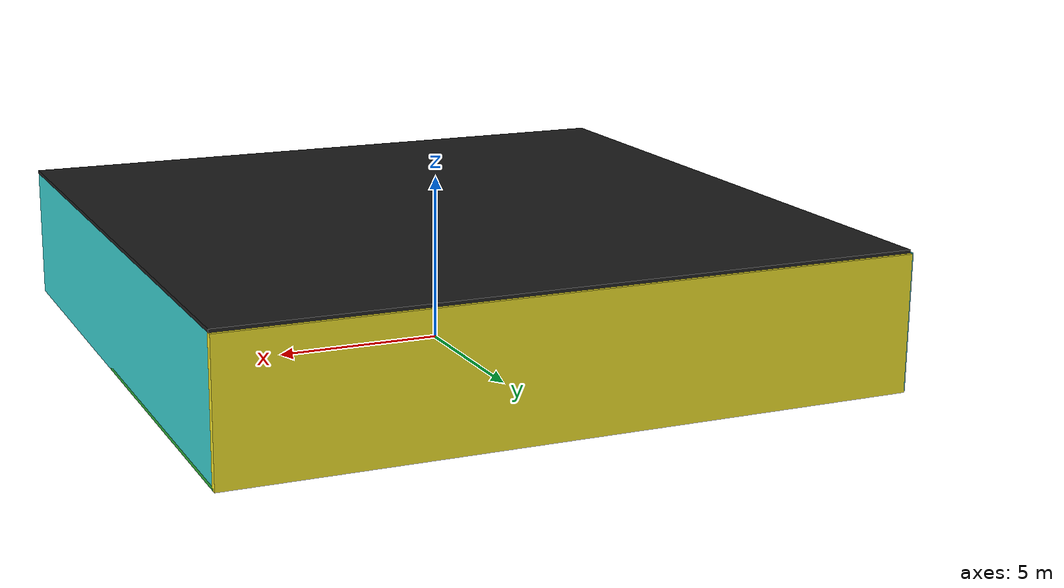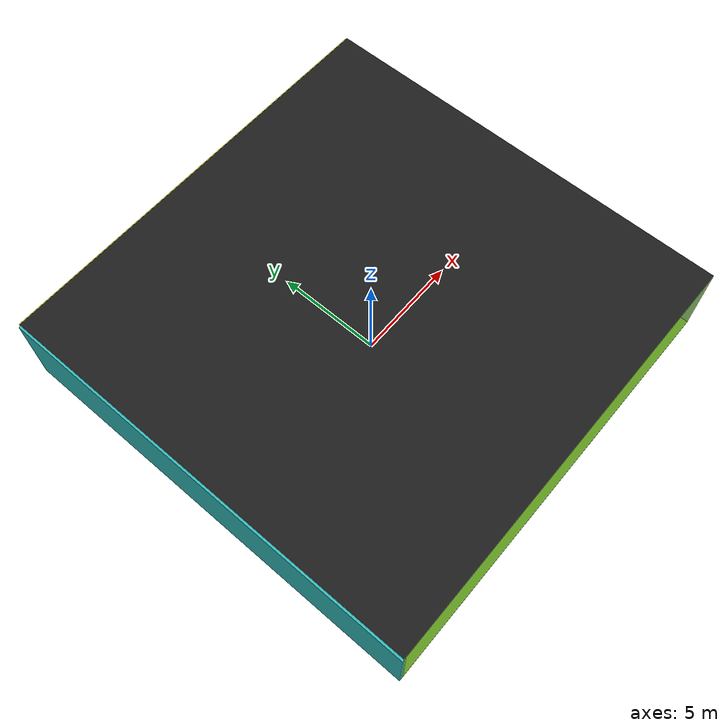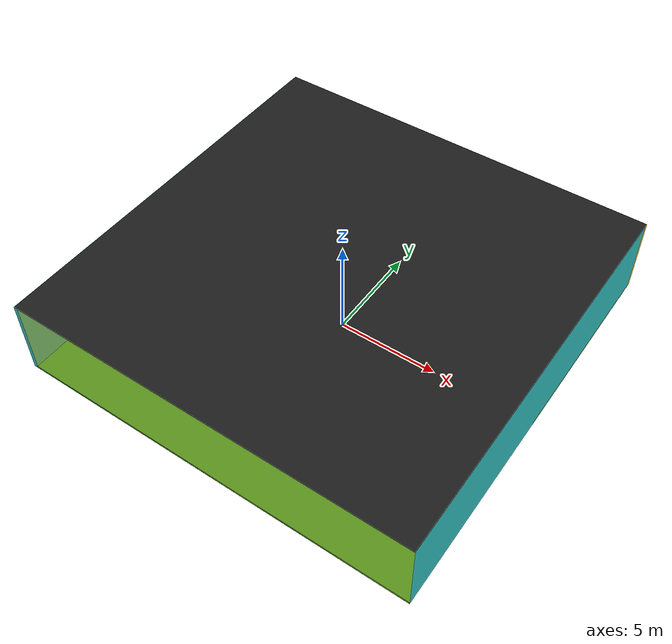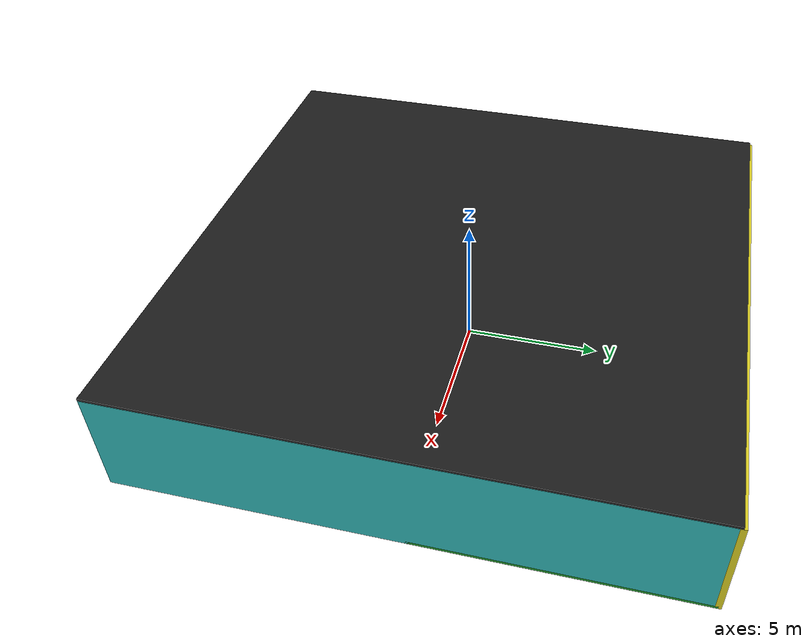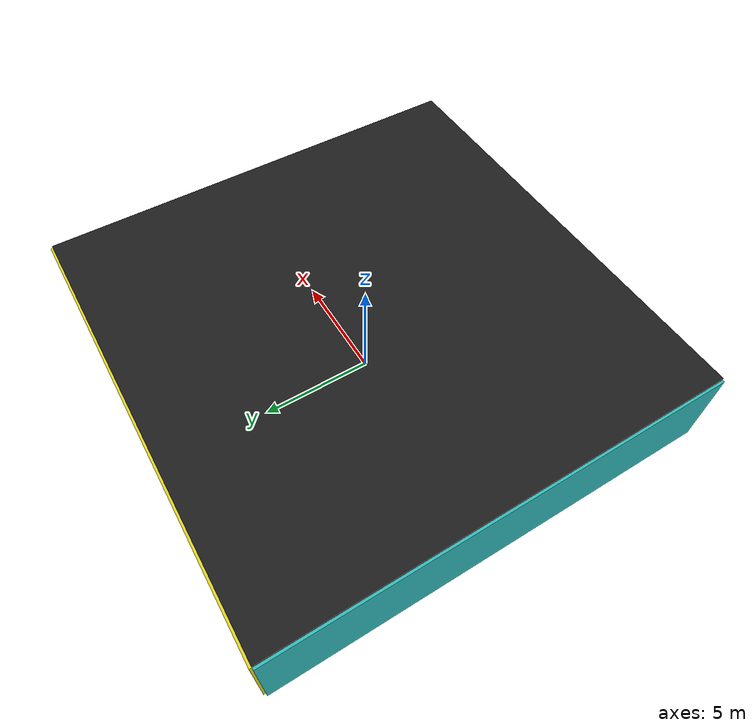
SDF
<sdf version="1.4">
 <world name="default">
  <physics type="ode">
   <max_step_size>0.001</max_step_size>
   <real_time_factor>1</real_time_factor>
   <real_time_update_rate>1000</real_time_update_rate>
   <gravity>0 0 -9.8</gravity>
  </physics>
  <scene><ambient>0.4 0.4 0.4 1</ambient><background>0.7 0.7 0.7 1</background><shadows>1</shadows></scene>
  <model name="Surrounding">
   <static>1</static>
   <link name="Ceiling">
    <collision name="Ceiling_Collision"><geometry><box><size>20 20 0.1</size></box></geometry></collision>
    <visual name="Ceiling_Visual">
     <geometry><box><size>20 20 0.1</size></box></geometry>
     <material>
      <script><uri>file://media/materials/scripts/gazebo.material</uri><name>Gazebo/Black</name></script>
     </material>
    </visual>
    <pose>0 0 4.05 0 0 0</pose>
   </link>
   <link name="Wall_South">
    <collision name="Wall_South_Collision">
     <geometry><box><size>20 0 4</size></box></geometry>
     <pose>0 0 2 0 -0 0</pose>
    </collision>
    <visual name="Wall_South_Visual">
     <pose>0 0 2 0 -0 0</pose>
     <geometry><box><size>20 0 4</size></box></geometry>
     <material>
      <script>
       <uri>file://media/materials/scripts/gazebo.material</uri>
       <name>Gazebo/YellowTransparent</name>
      </script>
     </material>
    </visual>
    <velocity_decay><linear>0</linear><angular>0</angular></velocity_decay>
    <pose>0 -10 0 0 -0 0</pose>
   </link>
   <link name="Wall_East">
    <collision name="Wall_21_Collision">
     <geometry><box><size>20 0 4</size></box></geometry>
     <pose>0 0 2 0 -0 0</pose>
    </collision>
    <visual name="Wall_21_Visual">
     <pose>0 0 2 0 -0 0</pose>
     <geometry><box><size>20 0 4</size></box></geometry>
     <material>
      <script><uri>file://media/materials/scripts/gazebo.material</uri><name>Gazebo/Turquoise</name></script>
     </material>
    </visual>
    <velocity_decay><linear>0</linear><angular>0</angular></velocity_decay>
    <pose>10 0 0 0 -0 1.5708</pose>
   </link>
   <link name="Wall_North">
    <collision name="Wall_22_Collision">
     <geometry><box><size>20 0.2 4</size></box></geometry>
     <pose>0 0 2 0 -0 0</pose>
    </collision>
    <visual name="Wall_22_Visual">
     <pose>0 0 2 0 -0 0</pose>
     <geometry><box><size>20 0.2 4</size></box></geometry>
     <material>
      <script><uri>file://media/materials/scripts/gazebo.material</uri><name>Gazebo/Yellow</name></script>
     </material>
    </visual>
    <velocity_decay><linear>0</linear><angular>0</angular></velocity_decay>
    <pose>0 10 0 0 -0 0</pose>
   </link>
   <link name="Wall_West">
    <collision name="Wall_23_Collision">
     <geometry><box><size>20 0.2 4</size></box></geometry>
     <pose>0 0 2 0 -0 0</pose>
    </collision>
    <visual name="Wall_23_Visual">
     <pose>0 0 2 0 -0 0</pose>
     <geometry><box><size>20 0.2 4</size></box></geometry>
     <material>
      <script><uri>file://media/materials/scripts/gazebo.material</uri><name>Gazebo/TurquoiseGlow</name></script>
     </material>
    </visual>
    <velocity_decay><linear>0</linear><angular>0</angular></velocity_decay>
    <pose>-10 0 0 0 0 -1.5708</pose>
   </link>
   <link name="Ground_link">
    <collision name="collision">
     <pose>0 0 .05 0 -0 0</pose>
     <geometry><box><size>20 20 0.1</size></box></geometry>
    </collision>
    <visual name="visual">
     <pose>0 0 .05 0 -0 0</pose>
     <geometry><box><size>20 20 0.1</size></box></geometry>
     <material>
      <script><uri>file://media/materials/scripts/gazebo.material</uri><name>Gazebo/Green</name></script>
     </material>
    </visual>
   </link>
   <static>1</static>
  </model>
  <spherical_coordinates>
   <surface_model>EARTH_WGS84</surface_model>
   <latitude_deg>0</latitude_deg>
   <longitude_deg>0</longitude_deg>
   <elevation>0</elevation>
   <heading_deg>0</heading_deg>
  </spherical_coordinates>
  <light name="lightball_0" type="diffuse">
   <diffuse>0.8 0.8 0.8 1</diffuse>
   <specular>0.2 0.2 0.2 1</specular>
   <attenuation>
    <range>100</range>
    <constant>0.7</constant>
    <linear>0.01</linear>
    <quadratic>0.001</quadratic>
   </attenuation>
   <direction>-0.5 0.1 -0.9</direction>
   <pose>-4.89754579783 5.28136972702 0.617834930412 0 0 0</pose>
  </light>
  <light name="lightball_1" type="diffuse">
   <diffuse>0.8 0.8 0.8 1</diffuse>
   <specular>0.2 0.2 0.2 1</specular>
   <attenuation>
    <range>100</range>
    <constant>0.7</constant>
    <linear>0.01</linear>
    <quadratic>0.001</quadratic>
   </attenuation>
   <direction>-0.5 0.1 -0.9</direction>
   <pose>-4.05056220942 -7.14162332679 3.74639867525 0 0 0</pose>
  </light>
  <light name="lightball_2" type="diffuse">
   <diffuse>0.8 0.8 0.8 1</diffuse>
   <specular>0.2 0.2 0.2 1</specular>
   <attenuation>
    <range>100</range>
    <constant>0.7</constant>
    <linear>0.01</linear>
    <quadratic>0.001</quadratic>
   </attenuation>
   <direction>-0.5 0.1 -0.9</direction>
   <pose>8.46160100586 -2.79185481254 2.49738559804 0 0 0</pose>
  </light>
  <light name="lightball_3" type="diffuse">
   <diffuse>0.8 0.8 0.8 1</diffuse>
   <specular>0.2 0.2 0.2 1</specular>
   <attenuation>
    <range>100</range>
    <constant>0.7</constant>
    <linear>0.01</linear>
    <quadratic>0.001</quadratic>
   </attenuation>
   <direction>-0.5 0.1 -0.9</direction>
   <pose>-6.03116148462 -1.62104549327 3.61018419879 0 0 0</pose>
  </light>
  <light name="lightball_4" type="diffuse">
   <diffuse>0.8 0.8 0.8 1</diffuse>
   <specular>0.2 0.2 0.2 1</specular>
   <attenuation>
    <range>100</range>
    <constant>0.7</constant>
    <linear>0.01</linear>
    <quadratic>0.001</quadratic>
   </attenuation>
   <direction>-0.5 0.1 -0.9</direction>
   <pose>3.60773878878 3.71215368201 2.70348655835 0 0 0</pose>
  </light>
  <include>
   <uri>model://robocup_3Dsim_goal</uri>
   <pose>-7.8255872023 7.4278519877 0 0 0 1.85948492104</pose>
  </include>
  <include><uri>model://table</uri><pose>-5.42577445801 -0.54460831255 0 0 0 1.19185950079</pose></include>
  <include><uri>model://cabinet</uri><pose>-3.56774635722 1.81915779 0 0 0 0.723764195708</pose></include>
 </world>
</sdf>

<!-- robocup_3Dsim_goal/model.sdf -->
<sdf version="1.5">
  <model name="robocup_3d_goal">
    <static>true</static>
    <link name="left_post">
      <pose>0 1.05 0.45 0 0 0</pose>
      <collision name="collision">
        <geometry>
          <cylinder>
            <radius>0.05</radius>
            <length>0.9</length>
          </cylinder>
        </geometry>
      </collision>
      <visual name="visual">
        <geometry>
          <cylinder>
            <radius>0.05</radius>
            <length>0.9</length>
          </cylinder>
        </geometry>
        <material>
          <script>
            <uri>file://media/materials/scripts/gazebo.material</uri>
            <name>Gazebo/ZincYellow</name>
          </script>
        </material>
      </visual>
    </link>
    <link name="left_support_horiz_lower">
      <pose>0.30 1.05 0.01 0 0 0</pose>
      <collision name="collision">
        <geometry>
          <box>
            <size>0.50 0.02 0.02</size>
          </box>
        </geometry>
      </collision>
      <visual name="visual">
        <geometry>
          <box>
            <size>0.50 0.02 0.02</size>
          </box>
        </geometry>
        <material>
          <script>
            <uri>file://media/materials/scripts/gazebo.material</uri>
            <name>Gazebo/White</name>
          </script>
        </material>
      </visual>
    </link>
    <link name="left_support_horiz_upper">
      <pose>0.30 1.05 0.79 0 0 0</pose>
      <collision name="collision">
        <geometry>
          <box>
            <size>0.50 0.02 0.02</size>
          </box>
        </geometry>
      </collision>
      <visual name="visual">
        <geometry>
          <box>
            <size>0.50 0.02 0.02</size>
          </box>
        </geometry>
        <material>
          <script>
            <uri>file://media/materials/scripts/gazebo.material</uri>
            <name>Gazebo/White</name>
          </script>
        </material>
      </visual>
    </link>
    <link name="left_support_vertical">
      <pose>0.56 1.05 0.4 0 1.5708 0</pose>
      <collision name="collision">
        <geometry>
          <box>
            <size>0.80 0.02 0.02</size>
          </box>
        </geometry>
      </collision>
      <visual name="visual">
        <geometry>
          <box>
            <size>0.80 0.02 0.02</size>
          </box>
        </geometry>
        <material>
          <script>
            <uri>file://media/materials/scripts/gazebo.material</uri>
            <name>Gazebo/White</name>
          </script>
        </material>
      </visual>
    </link>
    <link name="right_support_horiz_lower">
      <pose>0.30 -1.05 0.01 0 0 0</pose>
      <collision name="collision">
        <geometry>
          <box>
            <size>0.50 0.02 0.02</size>
          </box>
        </geometry>
      </collision>
      <visual name="visual">
        <geometry>
          <box>
            <size>0.50 0.02 0.02</size>
          </box>
        </geometry>
        <material>
          <script>
            <uri>file://media/materials/scripts/gazebo.material</uri>
            <name>Gazebo/White</name>
          </script>
        </material>
      </visual>
    </link>
    <link name="right_support_horiz_upper">
      <pose>0.30 -1.05 0.79 0 0 0</pose>
      <collision name="collision">
        <geometry>
          <box>
            <size>0.50 0.02 0.02</size>
          </box>
        </geometry>
      </collision>
      <visual name="visual">
        <geometry>
          <box>
            <size>0.50 0.02 0.02</size>
          </box>
        </geometry>
        <material>
          <script>
            <uri>file://media/materials/scripts/gazebo.material</uri>
            <name>Gazebo/White</name>
          </script>
        </material>
      </visual>
    </link>
    <link name="right_support_vertical">
      <pose>0.56 -1.05 0.4 0 1.5708 0</pose>
      <collision name="collision">
        <geometry>
          <box>
            <size>0.80 0.02 0.02</size>
          </box>
        </geometry>
      </collision>
      <visual name="visual">
        <geometry>
          <box>
            <size>0.80 0.02 0.02</size>
          </box>
        </geometry>
        <material>
          <script>
            <uri>file://media/materials/scripts/gazebo.material</uri>
            <name>Gazebo/White</name>
          </script>
        </material>
      </visual>
    </link>
    <link name="center_support_horiz_lower">
      <pose>0.56 0 0.01 0 1.5708 0</pose>
      <collision name="collision">
        <geometry>
          <box>
            <size>0.02 2.08 0.02</size>
          </box>
        </geometry>
      </collision>
      <visual name="visual">
        <geometry>
          <box>
            <size>0.02 2.08 0.02</size>
          </box>
        </geometry>
        <material>
          <script>
            <uri>file://media/materials/scripts/gazebo.material</uri>
            <name>Gazebo/White</name>
          </script>
        </material>
      </visual>
    </link>
    <link name="center_support_horiz_upper">
      <pose>0.56 0 0.79 0 1.5708 0</pose>
      <collision name="collision">
        <geometry>
          <box>
            <size>0.02 2.08 0.02</size>
          </box>
        </geometry>
      </collision>
      <visual name="visual">
        <geometry>
          <box>
            <size>0.02 2.08 0.02</size>
          </box>
        </geometry>
        <material>
          <script>
            <uri>file://media/materials/scripts/gazebo.material</uri>
            <name>Gazebo/White</name>
          </script>
        </material>
      </visual>
    </link>
    <link name="right_post">
      <pose>0 -1.05 0.45 0 0 0</pose>
      <collision name="collision">
        <geometry>
          <cylinder>
            <radius>0.05</radius>
            <length>0.9</length>
          </cylinder>
        </geometry>
      </collision>
      <visual name="visual">
        <geometry>
          <cylinder>
            <radius>0.05</radius>
            <length>0.9</length>
          </cylinder>
        </geometry>
        <material>
          <script>
            <uri>file://media/materials/scripts/gazebo.material</uri>
            <name>Gazebo/ZincYellow</name>
          </script>
        </material>
      </visual>
    </link>
    <link name="crossbar">
      <pose>0 0 0.85 1.57 1.57 0</pose>
      <collision name="collision">
        <geometry>
          <cylinder>
            <radius>0.05</radius>
            <length>2.0</length>
          </cylinder>
        </geometry>
      </collision>
      <visual name="visual">
        <geometry>
          <cylinder>
            <radius>0.05</radius>
            <length>2.0</length>
          </cylinder>
        </geometry>
        <material>
          <script>
            <uri>file://media/materials/scripts/gazebo.material</uri>
            <name>Gazebo/ZincYellow</name>
          </script>
        </material>
      </visual>
    </link>
    <link name="center_net">
      <pose>0.56 0 0.40 0 0 0</pose>
      <collision name="collision">
        <geometry>
          <box>
            <size>0.01 2.1 0.80</size>
          </box>
        </geometry>
      </collision>
      <visual name="visual">
        <geometry>
          <box>
            <size>0.01 2.1 0.80</size>
          </box>
        </geometry>
        <material>
          <script>
            <uri>model://../model_source/models/robocup09_spl_field/materials/scripts/</uri>
            <uri>model://../model_source/models/robocup09_spl_field/materials/textures/</uri>
            <name>RoboCup/Net</name>
          </script>
        </material>
      </visual>
    </link>
    <link name="left_net">
      <pose>0.30 1.05 0.40 0 0 0</pose>
      <collision name="collision">
        <geometry>
          <box>
            <size>0.50 0.01 0.76</size>
          </box>
        </geometry>
      </collision>
      <visual name="visual">
        <geometry>
          <box>
            <size>0.50 0.01 0.76</size>
          </box>
        </geometry>
        <material>
          <script>
            <uri>model://../model_source/models/robocup09_spl_field/materials/scripts/</uri>
            <uri>model://../model_source/models/robocup09_spl_field/materials/textures/</uri>
            <name>RoboCup/Net</name>
          </script>
        </material>
      </visual>
    </link>
    <link name="right_net">
      <pose>0.30 -1.05 0.40 0 0 0</pose>
      <collision name="collision">
        <geometry>
          <box>
            <size>0.50 0.01 0.76</size>
          </box>
        </geometry>
      </collision>
      <visual name="visual">
        <geometry>
          <box>
            <size>0.50 0.01 0.76</size>
          </box>
        </geometry>
        <material>
          <script>
            <uri>model://../model_source/models/robocup09_spl_field/materials/scripts/</uri>
            <uri>model://../model_source/models/robocup09_spl_field/materials/textures/</uri>
            <name>RoboCup/Net</name>
          </script>
        </material>
      </visual>
    </link>
  </model>
</sdf>

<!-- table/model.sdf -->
<sdf version="1.5">
  <model name="table">
    <static>true</static>
    <link name="link">
      <collision name="surface">
        <pose>0 0 1.0 0 0 0</pose>
        <geometry>
          <box>
            <size>1.5 0.8 0.03</size>
          </box>
        </geometry>
        <surface>
          <friction>
            <ode>
              <mu>0.6</mu>
              <mu2>0.6</mu2>
            </ode>
          </friction>
        </surface>
      </collision>
      <visual name="visual1">
        <pose>0 0 1.0 0 0 0</pose>
        <geometry>
          <box>
            <size>1.5 0.8 0.03</size>
          </box>
        </geometry>
        <material>
          <script>
            <uri>model://media/materials/scripts/gazebo.material</uri>
            <name>Gazebo/Wood</name>
          </script>
        </material>
      </visual>
      <collision name="front_left_leg">
        <pose>0.68 0.38 0.5 0 0 0</pose>
        <geometry>
          <cylinder>
            <radius>0.02</radius>
            <length>1.0</length>
          </cylinder>
        </geometry>
      </collision>
      <visual name="front_left_leg">
        <pose>0.68 0.38 0.5 0 0 0</pose>
        <geometry>
          <cylinder>
            <radius>0.02</radius>
            <length>1.0</length>
          </cylinder>
        </geometry>
        <material>
          <script>
            <uri>model://media/materials/scripts/gazebo.material</uri>
            <name>Gazebo/Grey</name>
          </script>
        </material>
      </visual>
      <collision name="front_right_leg">
        <pose>0.68 -0.38 0.5 0 0 0</pose>
        <geometry>
          <cylinder>
            <radius>0.02</radius>
            <length>1.0</length>
          </cylinder>
        </geometry>
      </collision>
      <visual name="front_right_leg">
        <pose>0.68 -0.38 0.5 0 0 0</pose>
        <geometry>
          <cylinder>
            <radius>0.02</radius>
            <length>1.0</length>
          </cylinder>
        </geometry>
        <material>
          <script>
            <uri>model://media/materials/scripts/gazebo.material</uri>
            <name>Gazebo/Grey</name>
          </script>
        </material>
      </visual>
      <collision name="back_right_leg">
        <pose>-0.68 -0.38 0.5 0 0 0</pose>
        <geometry>
          <cylinder>
            <radius>0.02</radius>
            <length>1.0</length>
          </cylinder>
        </geometry>
      </collision>
      <visual name="back_right_leg">
        <pose>-0.68 -0.38 0.5 0 0 0</pose>
        <geometry>
          <cylinder>
            <radius>0.02</radius>
            <length>1.0</length>
          </cylinder>
        </geometry>
        <material>
          <script>
            <uri>model://media/materials/scripts/gazebo.material</uri>
            <name>Gazebo/Grey</name>
          </script>
        </material>
      </visual>
      <collision name="back_left_leg">
        <pose>-0.68 0.38 0.5 0 0 0</pose>
        <geometry>
          <cylinder>
            <radius>0.02</radius>
            <length>1.0</length>
          </cylinder>
        </geometry>
      </collision>
      <visual name="back_left_leg">
        <pose>-0.68 0.38 0.5 0 0 0</pose>
        <geometry>
          <cylinder>
            <radius>0.02</radius>
            <length>1.0</length>
          </cylinder>
        </geometry>
        <material>
          <script>
            <uri>model://media/materials/scripts/gazebo.material</uri>
            <name>Gazebo/Grey</name>
          </script>
        </material>
      </visual>
    </link>
  </model>
</sdf>

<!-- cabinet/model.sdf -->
<sdf version="1.5">
  <model name="cabinet">
    <static>true</static>
    <link name="cabinet_bottom_plate">
      <inertial>
        <pose>0 0 -1 0 0 0</pose>
        <inertia>
          <ixx>2.050000</ixx>
          <ixy>0</ixy>
          <ixz>0</ixz>
          <iyy>2.050000</iyy>
          <iyz>0</iyz>
          <izz>2.050000</izz>
        </inertia>
        <mass>25.000000</mass>
      </inertial>
      <collision name="cabinet_bottom_plate_geom">
        <pose>0 0 0.010000 0 0 0</pose>
        <geometry>
          <box>
            <size>0.450000 0.450000 0.020000</size>
          </box>
        </geometry>
      </collision>
      <visual name="cabinet_bottom_plate_geom_visual">
        <pose>0 0 0.010000 0 0 0</pose>
        <geometry>
          <box>
            <size>0.450000 0.450000 0.020000</size>
          </box>
        </geometry>
        <material>
          <script>
            <uri>model://media/materials/scripts/gazebo.material</uri>
            <name>Gazebo/Wood</name>
          </script>
        </material>
      </visual>
      <collision name="cabinet_bottom_plate_geom_cabinet_back_plate">
        <pose>0.235000 0 0.510000 0 0 0</pose>
        <geometry>
          <box>
            <size>0.020000 0.450000 1.020000</size>
          </box>
        </geometry>
      </collision>
      <visual name="cabinet_bottom_plate_geom_cabinet_back_plate_visual">
        <pose>0.235000 0 0.510000 0 0 0</pose>
        <geometry>
          <box>
            <size>0.020000 0.450000 1.020000</size>
          </box>
        </geometry>
        <material>
          <script>
            <uri>model://media/materials/scripts/gazebo.material</uri>
            <name>Gazebo/Wood</name>
          </script>
        </material>
      </visual>
      <collision name="cabinet_bottom_plate_geom_cabinet_left_plate">
        <pose>0 0.235000 0.510000 0 0 0</pose>
        <geometry>
          <box>
            <size>0.450000 0.020000 1.020000</size>
          </box>
        </geometry>
      </collision>
      <visual name="cabinet_bottom_plate_geom_cabinet_left_plate_visual">
        <pose>0 0.235000 0.510000 0 0 0</pose>
        <geometry>
          <box>
            <size>0.450000 0.020000 1.020000</size>
          </box>
        </geometry>
        <material>
          <script>
            <uri>model://media/materials/scripts/gazebo.material</uri>
            <name>Gazebo/Wood</name>
          </script>
        </material>
      </visual>
      <collision name="cabinet_bottom_plate_geom_cabinet_middle_plate">
        <pose>0 0 0.510000 0 0 0</pose>
        <geometry>
          <box>
            <size>0.450000 0.450000 0.020000</size>
          </box>
        </geometry>
      </collision>
      <visual name="cabinet_bottom_plate_geom_cabinet_middle_plate_visual">
        <pose>0 0 0.510000 0 0 0</pose>
        <geometry>
          <box>
            <size>0.450000 0.450000 0.020000</size>
          </box>
        </geometry>
        <material>
          <script>
            <uri>model://media/materials/scripts/gazebo.material</uri>
            <name>Gazebo/Wood</name>
          </script>
        </material>
      </visual>
      <collision name="cabinet_bottom_plate_geom_cabinet_right_plate">
        <pose>0 -0.235000 0.510000 0 0 0</pose>
        <geometry>
          <box>
            <size>0.450000 0.020000 1.020000</size>
          </box>
        </geometry>
      </collision>
      <visual name="cabinet_bottom_plate_geom_cabinet_right_plate_visual">
        <pose>0 -0.235000 0.510000 0 0 0</pose>
        <geometry>
          <box>
            <size>0.450000 0.020000 1.020000</size>
          </box>
        </geometry>
        <material>
          <script>
            <uri>model://media/materials/scripts/gazebo.material</uri>
            <name>Gazebo/Wood</name>
          </script>
        </material>
      </visual>
      <collision name="cabinet_bottom_plate_geom_cabinet_top_plate">
        <pose>0 0 1.010000 0 0 0</pose>
        <geometry>
          <box>
            <size>0.450000 0.450000 0.020000</size>
          </box>
        </geometry>
      </collision>
      <visual name="cabinet_bottom_plate_geom_cabinet_top_plate_visual">
        <pose>0 0 1.010000 0 0 0</pose>
        <geometry>
          <box>
            <size>0.450000 0.450000 0.020000</size>
          </box>
        </geometry>
        <material>
          <script>
            <uri>model://media/materials/scripts/gazebo.material</uri>
            <name>Gazebo/Wood</name>
          </script>
        </material>
      </visual>
    </link>
  </model>
</sdf>
